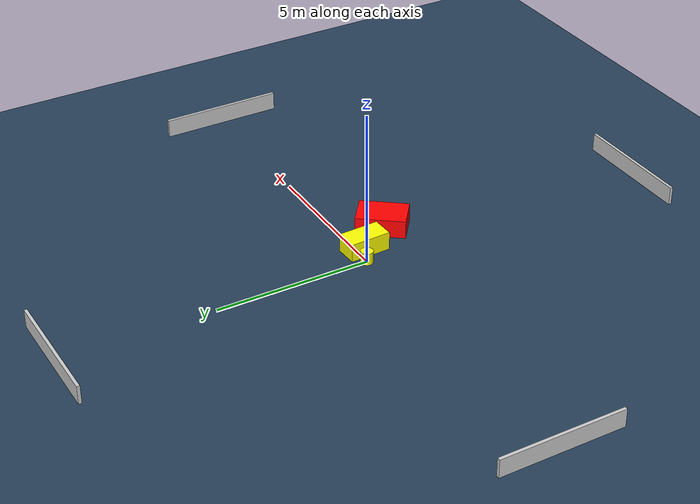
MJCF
<?xml version="1.0" ?>
<mujoco model="generated_environment">
  <option timestep="0.01" integrator="RK4" cone="elliptic"/>
  <default>
    <geom density="1"/>
  </default>
  <asset>
    <texture builtin="gradient" height="3072" name="skybox" rgb1="0.3 0.5 0.7" rgb2="0 0 0" type="skybox" width="512"/>
    <texture builtin="checker" height="300" name="groundplane" rgb1="0.2 0.3 0.4" rgb2="0.1 0.2 0.3" type="2d" width="300"/>
    <material name="groundplane" reflectance="0.2" texrepeat="5 5" texture="groundplane"/>
  </asset>
  <worldbody>
    <light dir="0 0 -1" directional="true" pos="0 0 1.5"/>
    <geom condim="3" friction="0.5 0.005 0.001" material="groundplane" name="floor" pos="0 0 0" size="0 0 0.05" type="plane"/>
    <body name="walls">
      <geom name="wall_1" condim="4" pos="-10.0 0.0 0.3" rgba="0.800000011920929 0.800000011920929 0.800000011920929 1.0" size="0.05 2.0 0.3" type="box"/>
      <geom name="wall_2" condim="4" pos="10.0 0.0 0.3" rgba="0.800000011920929 0.800000011920929 0.800000011920929 1.0" size="0.05 2.0 0.3" type="box"/>
      <geom name="wall_3" condim="4" pos="0.0 -10.0 0.3" rgba="0.800000011920929 0.800000011920929 0.800000011920929 1.0" size="2.0 0.05 0.3" type="box"/>
      <geom name="wall_4" condim="4" pos="0.0 10.0 0.3" rgba="0.800000011920929 0.800000011920929 0.800000011920929 1.0" size="2.0 0.05 0.3" type="box"/>
    </body>
    <body name="robot">
      <joint name="joint_x" type="slide" pos="0 0 0" axis="1 0 0"/>
      <joint name="joint_y" type="slide" pos="0 0 0" axis="0 1 0"/>
      <geom name="robot" type="cylinder" pos="0.0 0.0 0.2" size="0.2 0.2 0.0" mass="5.0" friction="1.0 0.005 0.0001" condim="4" rgba="1.0 1.0 0.0 1.0"/>
    </body>
    <body name="obstacle_1_movable">
      <geom name="obstacle_1_movable" condim="4" pos="0.5993861975414283 -0.2625470981606441 0.3" euler="0 0 182.44137891373566" friction="0.0 0.005 0.001" rgba="1.0 1.0 0.0 1.0" size="0.3617639416061731 0.6685649542373571 0.3" type="box" mass="0.1"/>
      <joint type="free"/>
    </body>
    <body name="obstacle_2_static">
      <geom name="obstacle_2_static" condim="4" pos="1.415702381443169 -1.3766545854526318 0.3" euler="0 0 52.36743372647823" friction="0.0 0.005 0.001" rgba="1.0 0.0 0.0 1.0" size="0.7921642798410582 0.5351115059137066 0.3" type="box"/>
    </body>
  </worldbody>
  <actuator>
    <motor name="actuator_x" joint="joint_x" gear="1" ctrlrange="-1 1"/>
    <motor name="actuator_y" joint="joint_y" gear="1" ctrlrange="-1 1"/>
  </actuator>
</mujoco>
